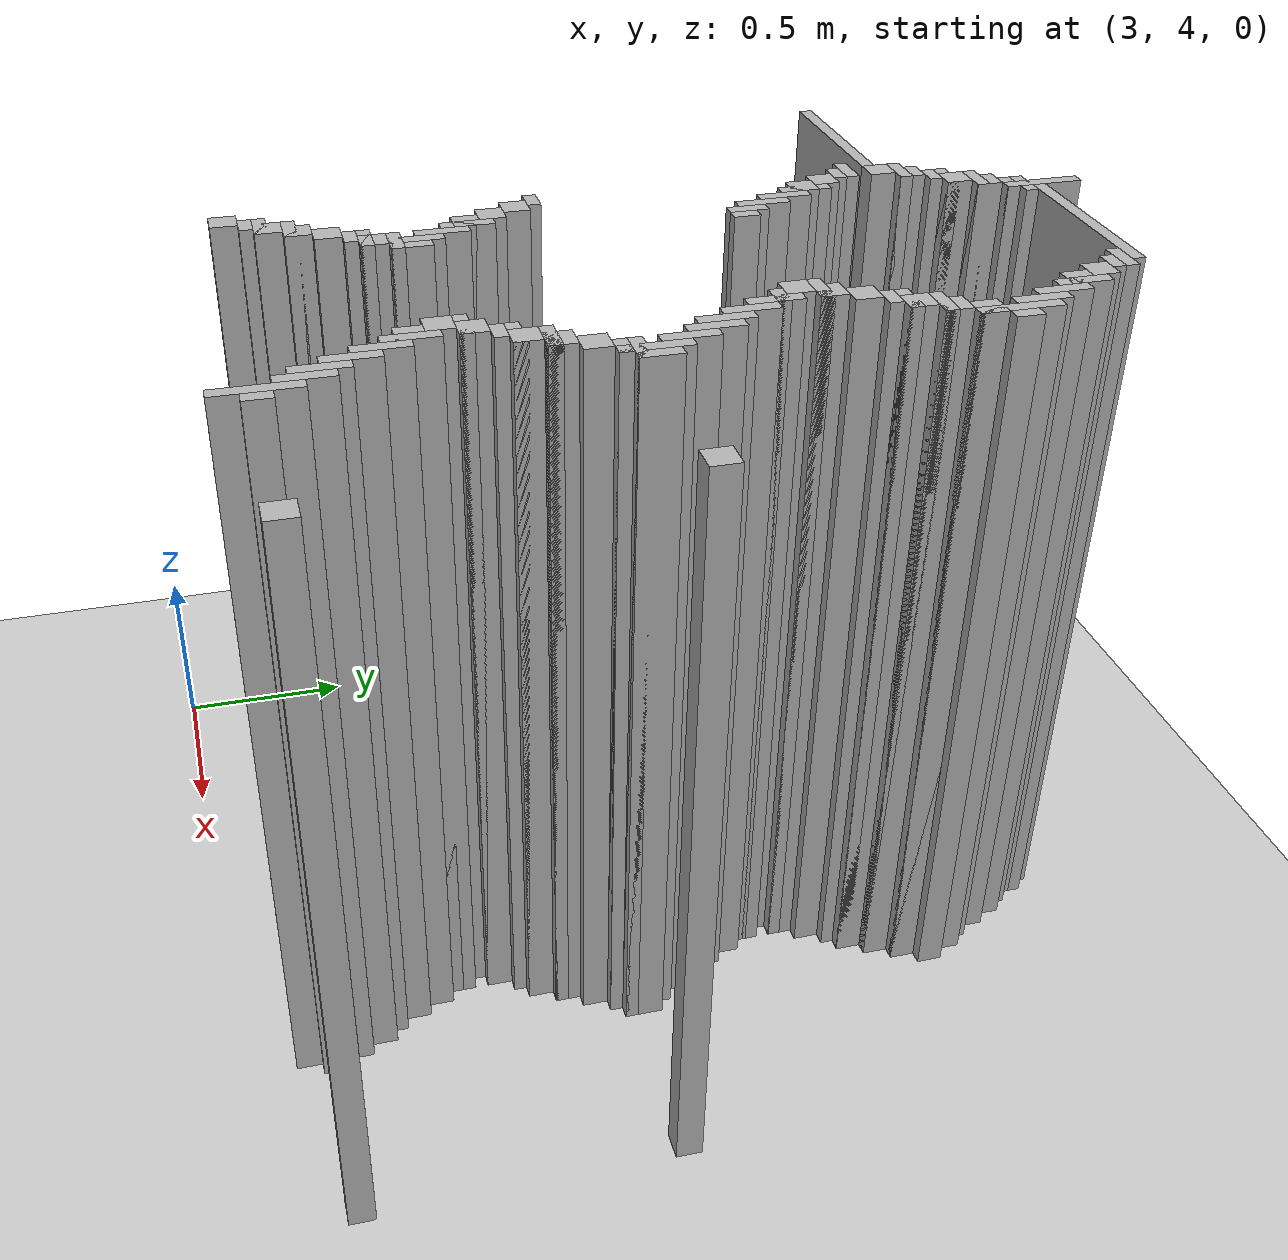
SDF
<sdf version="1.6">
 <world name="slam_world">
  <model name="ground_plane">
   <static>true</static>
   <link name="link">
    <collision name="collision">
     <geometry><plane><normal>0 0 1</normal><size>100 100</size></plane></geometry>
    </collision>
    <visual name="visual">
     <geometry><plane><normal>0 0 1</normal><size>100 100</size></plane></geometry>
     <material>
      <ambient>0.8 0.8 0.8 1</ambient>
      <diffuse>0.8 0.8 0.8 1</diffuse>
      <specular>0.8 0.8 0.8 1</specular>
     </material>
    </visual>
   </link>
  </model>
  <model name="wall_3571">
   <static>true</static>
   <pose>3.9501160092807424 6.403712296983758 1.0 0 0 0</pose>
   <link name="link">
    <collision name="collision">
     <geometry><box><size>0.03480278422273782 0.2088167053364269 2.0</size></box></geometry>
    </collision>
    <visual name="visual">
     <geometry><box><size>0.03480278422273782 0.2088167053364269 2.0</size></box></geometry>
     <material><ambient>0.5 0.5 0.5 1</ambient><diffuse>0.7 0.7 0.7 1</diffuse></material>
    </visual>
   </link>
  </model>
  <model name="wall_3613">
   <static>true</static>
   <pose>4.228538283062645 6.386310904872389 1.0 0 0 0</pose>
   <link name="link">
    <collision name="collision">
     <geometry><box><size>0.5220417633410672 0.03480278422273782 2.0</size></box></geometry>
    </collision>
    <visual name="visual">
     <geometry><box><size>0.5220417633410672 0.03480278422273782 2.0</size></box></geometry>
     <material><ambient>0.5 0.5 0.5 1</ambient><diffuse>0.7 0.7 0.7 1</diffuse></material>
    </visual>
   </link>
  </model>
  <model name="wall_3623">
   <static>true</static>
   <pose>3.9501160092807424 6.351508120649652 1.0 0 0 0</pose>
   <link name="link">
    <collision name="collision">
     <geometry><box><size>0.10440835266821345 0.03480278422273782 2.0</size></box></geometry>
    </collision>
    <visual name="visual">
     <geometry><box><size>0.10440835266821345 0.03480278422273782 2.0</size></box></geometry>
     <material><ambient>0.5 0.5 0.5 1</ambient><diffuse>0.7 0.7 0.7 1</diffuse></material>
    </visual>
   </link>
  </model>
  <model name="wall_3624">
   <static>true</static>
   <pose>4.472157772621809 6.351508120649652 1.0 0 0 0</pose>
   <link name="link">
    <collision name="collision">
     <geometry><box><size>0.10440835266821345 0.03480278422273782 2.0</size></box></geometry>
    </collision>
    <visual name="visual">
     <geometry><box><size>0.10440835266821345 0.03480278422273782 2.0</size></box></geometry>
     <material><ambient>0.5 0.5 0.5 1</ambient><diffuse>0.7 0.7 0.7 1</diffuse></material>
    </visual>
   </link>
  </model>
  <model name="wall_3633">
   <static>true</static>
   <pose>3.932714617169373 6.316705336426914 1.0 0 0 0</pose>
   <link name="link">
    <collision name="collision">
     <geometry><box><size>0.06960556844547564 0.03480278422273782 2.0</size></box></geometry>
    </collision>
    <visual name="visual">
     <geometry><box><size>0.06960556844547564 0.03480278422273782 2.0</size></box></geometry>
     <material><ambient>0.5 0.5 0.5 1</ambient><diffuse>0.7 0.7 0.7 1</diffuse></material>
    </visual>
   </link>
  </model>
  <model name="wall_3634">
   <static>true</static>
   <pose>4.489559164733178 6.316705336426914 1.0 0 0 0</pose>
   <link name="link">
    <collision name="collision">
     <geometry><box><size>0.06960556844547564 0.03480278422273782 2.0</size></box></geometry>
    </collision>
    <visual name="visual">
     <geometry><box><size>0.06960556844547564 0.03480278422273782 2.0</size></box></geometry>
     <material><ambient>0.5 0.5 0.5 1</ambient><diffuse>0.7 0.7 0.7 1</diffuse></material>
    </visual>
   </link>
  </model>
  <model name="wall_3645">
   <static>true</static>
   <pose>3.897911832946636 6.2645011600928076 1.0 0 0 0</pose>
   <link name="link">
    <collision name="collision">
     <geometry><box><size>0.06960556844547564 0.06960556844547564 2.0</size></box></geometry>
    </collision>
    <visual name="visual">
     <geometry><box><size>0.06960556844547564 0.06960556844547564 2.0</size></box></geometry>
     <material><ambient>0.5 0.5 0.5 1</ambient><diffuse>0.7 0.7 0.7 1</diffuse></material>
    </visual>
   </link>
  </model>
  <model name="wall_3646">
   <static>true</static>
   <pose>4.524361948955916 6.2645011600928076 1.0 0 0 0</pose>
   <link name="link">
    <collision name="collision">
     <geometry><box><size>0.06960556844547564 0.06960556844547564 2.0</size></box></geometry>
    </collision>
    <visual name="visual">
     <geometry><box><size>0.06960556844547564 0.06960556844547564 2.0</size></box></geometry>
     <material><ambient>0.5 0.5 0.5 1</ambient><diffuse>0.7 0.7 0.7 1</diffuse></material>
    </visual>
   </link>
  </model>
  <model name="wall_3658">
   <static>true</static>
   <pose>3.8805104408352666 6.247099767981438 1.0 0 0 0</pose>
   <link name="link">
    <collision name="collision">
     <geometry><box><size>0.10440835266821345 0.03480278422273782 2.0</size></box></geometry>
    </collision>
    <visual name="visual">
     <geometry><box><size>0.10440835266821345 0.03480278422273782 2.0</size></box></geometry>
     <material><ambient>0.5 0.5 0.5 1</ambient><diffuse>0.7 0.7 0.7 1</diffuse></material>
    </visual>
   </link>
  </model>
  <model name="wall_3659">
   <static>true</static>
   <pose>4.576566125290023 6.194895591647332 1.0 0 0 0</pose>
   <link name="link">
    <collision name="collision">
     <geometry><box><size>0.03480278422273782 0.13921113689095127 2.0</size></box></geometry>
    </collision>
    <visual name="visual">
     <geometry><box><size>0.03480278422273782 0.13921113689095127 2.0</size></box></geometry>
     <material><ambient>0.5 0.5 0.5 1</ambient><diffuse>0.7 0.7 0.7 1</diffuse></material>
    </visual>
   </link>
  </model>
  <model name="wall_3671">
   <static>true</static>
   <pose>3.863109048723898 6.194895591647332 1.0 0 0 0</pose>
   <link name="link">
    <collision name="collision">
     <geometry><box><size>0.06960556844547564 0.06960556844547564 2.0</size></box></geometry>
    </collision>
    <visual name="visual">
     <geometry><box><size>0.06960556844547564 0.06960556844547564 2.0</size></box></geometry>
     <material><ambient>0.5 0.5 0.5 1</ambient><diffuse>0.7 0.7 0.7 1</diffuse></material>
    </visual>
   </link>
  </model>
  <model name="wall_3672">
   <static>true</static>
   <pose>4.559164733178654 6.194895591647332 1.0 0 0 0</pose>
   <link name="link">
    <collision name="collision">
     <geometry><box><size>0.06960556844547564 0.06960556844547564 2.0</size></box></geometry>
    </collision>
    <visual name="visual">
     <geometry><box><size>0.06960556844547564 0.06960556844547564 2.0</size></box></geometry>
     <material><ambient>0.5 0.5 0.5 1</ambient><diffuse>0.7 0.7 0.7 1</diffuse></material>
    </visual>
   </link>
  </model>
  <model name="wall_3684">
   <static>true</static>
   <pose>3.845707656612529 6.177494199535962 1.0 0 0 0</pose>
   <link name="link">
    <collision name="collision">
     <geometry><box><size>0.10440835266821345 0.03480278422273782 2.0</size></box></geometry>
    </collision>
    <visual name="visual">
     <geometry><box><size>0.10440835266821345 0.03480278422273782 2.0</size></box></geometry>
     <material><ambient>0.5 0.5 0.5 1</ambient><diffuse>0.7 0.7 0.7 1</diffuse></material>
    </visual>
   </link>
  </model>
  <model name="wall_3685">
   <static>true</static>
   <pose>4.611368909512761 6.125290023201856 1.0 0 0 0</pose>
   <link name="link">
    <collision name="collision">
     <geometry><box><size>0.03480278422273782 0.13921113689095127 2.0</size></box></geometry>
    </collision>
    <visual name="visual">
     <geometry><box><size>0.03480278422273782 0.13921113689095127 2.0</size></box></geometry>
     <material><ambient>0.5 0.5 0.5 1</ambient><diffuse>0.7 0.7 0.7 1</diffuse></material>
    </visual>
   </link>
  </model>
  <model name="wall_3695">
   <static>true</static>
   <pose>3.82830626450116 6.142691415313225 1.0 0 0 0</pose>
   <link name="link">
    <collision name="collision">
     <geometry><box><size>0.06960556844547564 0.03480278422273782 2.0</size></box></geometry>
    </collision>
    <visual name="visual">
     <geometry><box><size>0.06960556844547564 0.03480278422273782 2.0</size></box></geometry>
     <material><ambient>0.5 0.5 0.5 1</ambient><diffuse>0.7 0.7 0.7 1</diffuse></material>
    </visual>
   </link>
  </model>
  <model name="wall_3702">
   <static>true</static>
   <pose>3.793503480278422 6.090487238979118 1.0 0 0 0</pose>
   <link name="link">
    <collision name="collision">
     <geometry><box><size>0.06960556844547564 0.06960556844547564 2.0</size></box></geometry>
    </collision>
    <visual name="visual">
     <geometry><box><size>0.06960556844547564 0.06960556844547564 2.0</size></box></geometry>
     <material><ambient>0.5 0.5 0.5 1</ambient><diffuse>0.7 0.7 0.7 1</diffuse></material>
    </visual>
   </link>
  </model>
  <model name="wall_3703">
   <static>true</static>
   <pose>4.646171693735498 6.05568445475638 1.0 0 0 0</pose>
   <link name="link">
    <collision name="collision">
     <geometry><box><size>0.03480278422273782 0.13921113689095127 2.0</size></box></geometry>
    </collision>
    <visual name="visual">
     <geometry><box><size>0.03480278422273782 0.13921113689095127 2.0</size></box></geometry>
     <material><ambient>0.5 0.5 0.5 1</ambient><diffuse>0.7 0.7 0.7 1</diffuse></material>
    </visual>
   </link>
  </model>
  <model name="wall_3715">
   <static>true</static>
   <pose>3.776102088167053 6.073085846867749 1.0 0 0 0</pose>
   <link name="link">
    <collision name="collision">
     <geometry><box><size>0.10440835266821345 0.03480278422273782 2.0</size></box></geometry>
    </collision>
    <visual name="visual">
     <geometry><box><size>0.10440835266821345 0.03480278422273782 2.0</size></box></geometry>
     <material><ambient>0.5 0.5 0.5 1</ambient><diffuse>0.7 0.7 0.7 1</diffuse></material>
    </visual>
   </link>
  </model>
  <model name="wall_3716">
   <static>true</static>
   <pose>4.6809744779582365 5.986078886310905 1.0 0 0 0</pose>
   <link name="link">
    <collision name="collision">
     <geometry><box><size>0.03480278422273782 0.2088167053364269 2.0</size></box></geometry>
    </collision>
    <visual name="visual">
     <geometry><box><size>0.03480278422273782 0.2088167053364269 2.0</size></box></geometry>
     <material><ambient>0.5 0.5 0.5 1</ambient><diffuse>0.7 0.7 0.7 1</diffuse></material>
    </visual>
   </link>
  </model>
  <model name="wall_3726">
   <static>true</static>
   <pose>3.7587006960556844 6.020881670533642 1.0 0 0 0</pose>
   <link name="link">
    <collision name="collision">
     <geometry><box><size>0.06960556844547564 0.06960556844547564 2.0</size></box></geometry>
    </collision>
    <visual name="visual">
     <geometry><box><size>0.06960556844547564 0.06960556844547564 2.0</size></box></geometry>
     <material><ambient>0.5 0.5 0.5 1</ambient><diffuse>0.7 0.7 0.7 1</diffuse></material>
    </visual>
   </link>
  </model>
  <model name="wall_3733">
   <static>true</static>
   <pose>3.51508120649652 6.003480278422273 1.0 0 0 0</pose>
   <link name="link">
    <collision name="collision">
     <geometry><box><size>0.5568445475638051 0.03480278422273782 2.0</size></box></geometry>
    </collision>
    <visual name="visual">
     <geometry><box><size>0.5568445475638051 0.03480278422273782 2.0</size></box></geometry>
     <material><ambient>0.5 0.5 0.5 1</ambient><diffuse>0.7 0.7 0.7 1</diffuse></material>
    </visual>
   </link>
  </model>
  <model name="wall_3734">
   <static>true</static>
   <pose>4.715777262180974 5.986078886310905 1.0 0 0 0</pose>
   <link name="link">
    <collision name="collision">
     <geometry><box><size>0.03480278422273782 0.06960556844547564 2.0</size></box></geometry>
    </collision>
    <visual name="visual">
     <geometry><box><size>0.03480278422273782 0.06960556844547564 2.0</size></box></geometry>
     <material><ambient>0.5 0.5 0.5 1</ambient><diffuse>0.7 0.7 0.7 1</diffuse></material>
    </visual>
   </link>
  </model>
  <model name="wall_3755">
   <static>true</static>
   <pose>3.741299303944315 5.933874709976798 1.0 0 0 0</pose>
   <link name="link">
    <collision name="collision">
     <geometry><box><size>0.10440835266821345 0.03480278422273782 2.0</size></box></geometry>
    </collision>
    <visual name="visual">
     <geometry><box><size>0.10440835266821345 0.03480278422273782 2.0</size></box></geometry>
     <material><ambient>0.5 0.5 0.5 1</ambient><diffuse>0.7 0.7 0.7 1</diffuse></material>
    </visual>
   </link>
  </model>
  <model name="wall_3756">
   <static>true</static>
   <pose>4.663573085846868 5.916473317865429 1.0 0 0 0</pose>
   <link name="link">
    <collision name="collision">
     <geometry><box><size>0.06960556844547564 0.06960556844547564 2.0</size></box></geometry>
    </collision>
    <visual name="visual">
     <geometry><box><size>0.06960556844547564 0.06960556844547564 2.0</size></box></geometry>
     <material><ambient>0.5 0.5 0.5 1</ambient><diffuse>0.7 0.7 0.7 1</diffuse></material>
    </visual>
   </link>
  </model>
  <model name="wall_3766">
   <static>true</static>
   <pose>3.7587006960556844 5.89907192575406 1.0 0 0 0</pose>
   <link name="link">
    <collision name="collision">
     <geometry><box><size>0.06960556844547564 0.03480278422273782 2.0</size></box></geometry>
    </collision>
    <visual name="visual">
     <geometry><box><size>0.06960556844547564 0.03480278422273782 2.0</size></box></geometry>
     <material><ambient>0.5 0.5 0.5 1</ambient><diffuse>0.7 0.7 0.7 1</diffuse></material>
    </visual>
   </link>
  </model>
  <model name="wall_3774">
   <static>true</static>
   <pose>3.793503480278422 5.846867749419953 1.0 0 0 0</pose>
   <link name="link">
    <collision name="collision">
     <geometry><box><size>0.06960556844547564 0.06960556844547564 2.0</size></box></geometry>
    </collision>
    <visual name="visual">
     <geometry><box><size>0.06960556844547564 0.06960556844547564 2.0</size></box></geometry>
     <material><ambient>0.5 0.5 0.5 1</ambient><diffuse>0.7 0.7 0.7 1</diffuse></material>
    </visual>
   </link>
  </model>
  <model name="wall_3775">
   <static>true</static>
   <pose>4.6287703016241295 5.846867749419953 1.0 0 0 0</pose>
   <link name="link">
    <collision name="collision">
     <geometry><box><size>0.06960556844547564 0.06960556844547564 2.0</size></box></geometry>
    </collision>
    <visual name="visual">
     <geometry><box><size>0.06960556844547564 0.06960556844547564 2.0</size></box></geometry>
     <material><ambient>0.5 0.5 0.5 1</ambient><diffuse>0.7 0.7 0.7 1</diffuse></material>
    </visual>
   </link>
  </model>
  <model name="wall_3787">
   <static>true</static>
   <pose>3.845707656612529 5.7772621809744775 1.0 0 0 0</pose>
   <link name="link">
    <collision name="collision">
     <geometry><box><size>0.03480278422273782 0.13921113689095127 2.0</size></box></geometry>
    </collision>
    <visual name="visual">
     <geometry><box><size>0.03480278422273782 0.13921113689095127 2.0</size></box></geometry>
     <material><ambient>0.5 0.5 0.5 1</ambient><diffuse>0.7 0.7 0.7 1</diffuse></material>
    </visual>
   </link>
  </model>
  <model name="wall_3788">
   <static>true</static>
   <pose>4.611368909512761 5.8294663573085845 1.0 0 0 0</pose>
   <link name="link">
    <collision name="collision">
     <geometry><box><size>0.10440835266821345 0.03480278422273782 2.0</size></box></geometry>
    </collision>
    <visual name="visual">
     <geometry><box><size>0.10440835266821345 0.03480278422273782 2.0</size></box></geometry>
     <material><ambient>0.5 0.5 0.5 1</ambient><diffuse>0.7 0.7 0.7 1</diffuse></material>
    </visual>
   </link>
  </model>
  <model name="wall_3800">
   <static>true</static>
   <pose>3.82830626450116 5.7772621809744775 1.0 0 0 0</pose>
   <link name="link">
    <collision name="collision">
     <geometry><box><size>0.06960556844547564 0.06960556844547564 2.0</size></box></geometry>
    </collision>
    <visual name="visual">
     <geometry><box><size>0.06960556844547564 0.06960556844547564 2.0</size></box></geometry>
     <material><ambient>0.5 0.5 0.5 1</ambient><diffuse>0.7 0.7 0.7 1</diffuse></material>
    </visual>
   </link>
  </model>
  <model name="wall_3801">
   <static>true</static>
   <pose>4.593967517401392 5.7772621809744775 1.0 0 0 0</pose>
   <link name="link">
    <collision name="collision">
     <geometry><box><size>0.06960556844547564 0.06960556844547564 2.0</size></box></geometry>
    </collision>
    <visual name="visual">
     <geometry><box><size>0.06960556844547564 0.06960556844547564 2.0</size></box></geometry>
     <material><ambient>0.5 0.5 0.5 1</ambient><diffuse>0.7 0.7 0.7 1</diffuse></material>
    </visual>
   </link>
  </model>
  <model name="wall_3812">
   <static>true</static>
   <pose>3.8805104408352666 5.707656612529002 1.0 0 0 0</pose>
   <link name="link">
    <collision name="collision">
     <geometry><box><size>0.03480278422273782 0.13921113689095127 2.0</size></box></geometry>
    </collision>
    <visual name="visual">
     <geometry><box><size>0.03480278422273782 0.13921113689095127 2.0</size></box></geometry>
     <material><ambient>0.5 0.5 0.5 1</ambient><diffuse>0.7 0.7 0.7 1</diffuse></material>
    </visual>
   </link>
  </model>
  <model name="wall_3813">
   <static>true</static>
   <pose>4.576566125290023 5.759860788863109 1.0 0 0 0</pose>
   <link name="link">
    <collision name="collision">
     <geometry><box><size>0.10440835266821345 0.03480278422273782 2.0</size></box></geometry>
    </collision>
    <visual name="visual">
     <geometry><box><size>0.10440835266821345 0.03480278422273782 2.0</size></box></geometry>
     <material><ambient>0.5 0.5 0.5 1</ambient><diffuse>0.7 0.7 0.7 1</diffuse></material>
    </visual>
   </link>
  </model>
  <model name="wall_3824">
   <static>true</static>
   <pose>4.559164733178654 5.725058004640371 1.0 0 0 0</pose>
   <link name="link">
    <collision name="collision">
     <geometry><box><size>0.06960556844547564 0.03480278422273782 2.0</size></box></geometry>
    </collision>
    <visual name="visual">
     <geometry><box><size>0.06960556844547564 0.03480278422273782 2.0</size></box></geometry>
     <material><ambient>0.5 0.5 0.5 1</ambient><diffuse>0.7 0.7 0.7 1</diffuse></material>
    </visual>
   </link>
  </model>
  <model name="wall_3831">
   <static>true</static>
   <pose>3.9153132250580045 5.638051044083526 1.0 0 0 0</pose>
   <link name="link">
    <collision name="collision">
     <geometry><box><size>0.03480278422273782 0.13921113689095127 2.0</size></box></geometry>
    </collision>
    <visual name="visual">
     <geometry><box><size>0.03480278422273782 0.13921113689095127 2.0</size></box></geometry>
     <material><ambient>0.5 0.5 0.5 1</ambient><diffuse>0.7 0.7 0.7 1</diffuse></material>
    </visual>
   </link>
  </model>
  <model name="wall_3832">
   <static>true</static>
   <pose>4.524361948955916 5.672853828306264 1.0 0 0 0</pose>
   <link name="link">
    <collision name="collision">
     <geometry><box><size>0.06960556844547564 0.06960556844547564 2.0</size></box></geometry>
    </collision>
    <visual name="visual">
     <geometry><box><size>0.06960556844547564 0.06960556844547564 2.0</size></box></geometry>
     <material><ambient>0.5 0.5 0.5 1</ambient><diffuse>0.7 0.7 0.7 1</diffuse></material>
    </visual>
   </link>
  </model>
  <model name="wall_3844">
   <static>true</static>
   <pose>3.9501160092807424 5.58584686774942 1.0 0 0 0</pose>
   <link name="link">
    <collision name="collision">
     <geometry><box><size>0.03480278422273782 0.10440835266821345 2.0</size></box></geometry>
    </collision>
    <visual name="visual">
     <geometry><box><size>0.03480278422273782 0.10440835266821345 2.0</size></box></geometry>
     <material><ambient>0.5 0.5 0.5 1</ambient><diffuse>0.7 0.7 0.7 1</diffuse></material>
    </visual>
   </link>
  </model>
  <model name="wall_3845">
   <static>true</static>
   <pose>4.489559164733178 5.603248259860789 1.0 0 0 0</pose>
   <link name="link">
    <collision name="collision">
     <geometry><box><size>0.06960556844547564 0.06960556844547564 2.0</size></box></geometry>
    </collision>
    <visual name="visual">
     <geometry><box><size>0.06960556844547564 0.06960556844547564 2.0</size></box></geometry>
     <material><ambient>0.5 0.5 0.5 1</ambient><diffuse>0.7 0.7 0.7 1</diffuse></material>
    </visual>
   </link>
  </model>
  <model name="wall_3857">
   <static>true</static>
   <pose>3.98491879350348 5.56844547563805 1.0 0 0 0</pose>
   <link name="link">
    <collision name="collision">
     <geometry><box><size>0.03480278422273782 0.06960556844547564 2.0</size></box></geometry>
    </collision>
    <visual name="visual">
     <geometry><box><size>0.03480278422273782 0.06960556844547564 2.0</size></box></geometry>
     <material><ambient>0.5 0.5 0.5 1</ambient><diffuse>0.7 0.7 0.7 1</diffuse></material>
    </visual>
   </link>
  </model>
  <model name="wall_3858">
   <static>true</static>
   <pose>4.472157772621809 5.58584686774942 1.0 0 0 0</pose>
   <link name="link">
    <collision name="collision">
     <geometry><box><size>0.10440835266821345 0.03480278422273782 2.0</size></box></geometry>
    </collision>
    <visual name="visual">
     <geometry><box><size>0.10440835266821345 0.03480278422273782 2.0</size></box></geometry>
     <material><ambient>0.5 0.5 0.5 1</ambient><diffuse>0.7 0.7 0.7 1</diffuse></material>
    </visual>
   </link>
  </model>
  <model name="wall_3871">
   <static>true</static>
   <pose>4.454756380510441 5.533642691415313 1.0 0 0 0</pose>
   <link name="link">
    <collision name="collision">
     <geometry><box><size>0.06960556844547564 0.06960556844547564 2.0</size></box></geometry>
    </collision>
    <visual name="visual">
     <geometry><box><size>0.06960556844547564 0.06960556844547564 2.0</size></box></geometry>
     <material><ambient>0.5 0.5 0.5 1</ambient><diffuse>0.7 0.7 0.7 1</diffuse></material>
    </visual>
   </link>
  </model>
  <model name="wall_3882">
   <static>true</static>
   <pose>4.506960556844548 5.464037122969837 1.0 0 0 0</pose>
   <link name="link">
    <collision name="collision">
     <geometry><box><size>0.03480278422273782 0.13921113689095127 2.0</size></box></geometry>
    </collision>
    <visual name="visual">
     <geometry><box><size>0.03480278422273782 0.13921113689095127 2.0</size></box></geometry>
     <material><ambient>0.5 0.5 0.5 1</ambient><diffuse>0.7 0.7 0.7 1</diffuse></material>
    </visual>
   </link>
  </model>
  <model name="wall_3897">
   <static>true</static>
   <pose>4.489559164733178 5.481438515081206 1.0 0 0 0</pose>
   <link name="link">
    <collision name="collision">
     <geometry><box><size>0.06960556844547564 0.03480278422273782 2.0</size></box></geometry>
    </collision>
    <visual name="visual">
     <geometry><box><size>0.06960556844547564 0.03480278422273782 2.0</size></box></geometry>
     <material><ambient>0.5 0.5 0.5 1</ambient><diffuse>0.7 0.7 0.7 1</diffuse></material>
    </visual>
   </link>
  </model>
  <model name="wall_3910">
   <static>true</static>
   <pose>4.541763341067285 5.3944315545243615 1.0 0 0 0</pose>
   <link name="link">
    <collision name="collision">
     <geometry><box><size>0.03480278422273782 0.13921113689095127 2.0</size></box></geometry>
    </collision>
    <visual name="visual">
     <geometry><box><size>0.03480278422273782 0.13921113689095127 2.0</size></box></geometry>
     <material><ambient>0.5 0.5 0.5 1</ambient><diffuse>0.7 0.7 0.7 1</diffuse></material>
    </visual>
   </link>
  </model>
  <model name="wall_3923">
   <static>true</static>
   <pose>4.576566125290023 5.324825986078886 1.0 0 0 0</pose>
   <link name="link">
    <collision name="collision">
     <geometry><box><size>0.03480278422273782 0.13921113689095127 2.0</size></box></geometry>
    </collision>
    <visual name="visual">
     <geometry><box><size>0.03480278422273782 0.13921113689095127 2.0</size></box></geometry>
     <material><ambient>0.5 0.5 0.5 1</ambient><diffuse>0.7 0.7 0.7 1</diffuse></material>
    </visual>
   </link>
  </model>
  <model name="wall_3936">
   <static>true</static>
   <pose>4.611368909512761 5.290023201856148 1.0 0 0 0</pose>
   <link name="link">
    <collision name="collision">
     <geometry><box><size>0.03480278422273782 0.13921113689095127 2.0</size></box></geometry>
    </collision>
    <visual name="visual">
     <geometry><box><size>0.03480278422273782 0.13921113689095127 2.0</size></box></geometry>
     <material><ambient>0.5 0.5 0.5 1</ambient><diffuse>0.7 0.7 0.7 1</diffuse></material>
    </visual>
   </link>
  </model>
  <model name="wall_3957">
   <static>true</static>
   <pose>4.646171693735498 5.220417633410673 1.0 0 0 0</pose>
   <link name="link">
    <collision name="collision">
     <geometry><box><size>0.03480278422273782 0.13921113689095127 2.0</size></box></geometry>
    </collision>
    <visual name="visual">
     <geometry><box><size>0.03480278422273782 0.13921113689095127 2.0</size></box></geometry>
     <material><ambient>0.5 0.5 0.5 1</ambient><diffuse>0.7 0.7 0.7 1</diffuse></material>
    </visual>
   </link>
  </model>
  <model name="wall_3977">
   <static>true</static>
   <pose>4.6809744779582365 5.133410672853828 1.0 0 0 0</pose>
   <link name="link">
    <collision name="collision">
     <geometry><box><size>0.03480278422273782 0.17401392111368907 2.0</size></box></geometry>
    </collision>
    <visual name="visual">
     <geometry><box><size>0.03480278422273782 0.17401392111368907 2.0</size></box></geometry>
     <material><ambient>0.5 0.5 0.5 1</ambient><diffuse>0.7 0.7 0.7 1</diffuse></material>
    </visual>
   </link>
  </model>
  <model name="wall_3990">
   <static>true</static>
   <pose>4.715777262180974 5.133410672853828 1.0 0 0 0</pose>
   <link name="link">
    <collision name="collision">
     <geometry><box><size>0.03480278422273782 0.10440835266821345 2.0</size></box></geometry>
    </collision>
    <visual name="visual">
     <geometry><box><size>0.03480278422273782 0.10440835266821345 2.0</size></box></geometry>
     <material><ambient>0.5 0.5 0.5 1</ambient><diffuse>0.7 0.7 0.7 1</diffuse></material>
    </visual>
   </link>
  </model>
  <model name="wall_4003">
   <static>true</static>
   <pose>5.185614849187935 5.1160092807424595 1.0 0 0 0</pose>
   <link name="link">
    <collision name="collision">
     <geometry><box><size>0.06960556844547564 0.06960556844547564 2.0</size></box></geometry>
    </collision>
    <visual name="visual">
     <geometry><box><size>0.06960556844547564 0.06960556844547564 2.0</size></box></geometry>
     <material><ambient>0.5 0.5 0.5 1</ambient><diffuse>0.7 0.7 0.7 1</diffuse></material>
    </visual>
   </link>
  </model>
  <model name="wall_4013">
   <static>true</static>
   <pose>4.6809744779582365 5.09860788863109 1.0 0 0 0</pose>
   <link name="link">
    <collision name="collision">
     <geometry><box><size>0.10440835266821345 0.03480278422273782 2.0</size></box></geometry>
    </collision>
    <visual name="visual">
     <geometry><box><size>0.10440835266821345 0.03480278422273782 2.0</size></box></geometry>
     <material><ambient>0.5 0.5 0.5 1</ambient><diffuse>0.7 0.7 0.7 1</diffuse></material>
    </visual>
   </link>
  </model>
  <model name="wall_4027">
   <static>true</static>
   <pose>3.7587006960556844 5.0638051044083525 1.0 0 0 0</pose>
   <link name="link">
    <collision name="collision">
     <geometry><box><size>0.06960556844547564 0.03480278422273782 2.0</size></box></geometry>
    </collision>
    <visual name="visual">
     <geometry><box><size>0.06960556844547564 0.03480278422273782 2.0</size></box></geometry>
     <material><ambient>0.5 0.5 0.5 1</ambient><diffuse>0.7 0.7 0.7 1</diffuse></material>
    </visual>
   </link>
  </model>
  <model name="wall_4028">
   <static>true</static>
   <pose>4.663573085846868 5.0638051044083525 1.0 0 0 0</pose>
   <link name="link">
    <collision name="collision">
     <geometry><box><size>0.06960556844547564 0.03480278422273782 2.0</size></box></geometry>
    </collision>
    <visual name="visual">
     <geometry><box><size>0.06960556844547564 0.03480278422273782 2.0</size></box></geometry>
     <material><ambient>0.5 0.5 0.5 1</ambient><diffuse>0.7 0.7 0.7 1</diffuse></material>
    </visual>
   </link>
  </model>
  <model name="wall_4042">
   <static>true</static>
   <pose>3.793503480278422 5.0116009280742455 1.0 0 0 0</pose>
   <link name="link">
    <collision name="collision">
     <geometry><box><size>0.06960556844547564 0.06960556844547564 2.0</size></box></geometry>
    </collision>
    <visual name="visual">
     <geometry><box><size>0.06960556844547564 0.06960556844547564 2.0</size></box></geometry>
     <material><ambient>0.5 0.5 0.5 1</ambient><diffuse>0.7 0.7 0.7 1</diffuse></material>
    </visual>
   </link>
  </model>
  <model name="wall_4043">
   <static>true</static>
   <pose>4.6287703016241295 5.0116009280742455 1.0 0 0 0</pose>
   <link name="link">
    <collision name="collision">
     <geometry><box><size>0.06960556844547564 0.06960556844547564 2.0</size></box></geometry>
    </collision>
    <visual name="visual">
     <geometry><box><size>0.06960556844547564 0.06960556844547564 2.0</size></box></geometry>
     <material><ambient>0.5 0.5 0.5 1</ambient><diffuse>0.7 0.7 0.7 1</diffuse></material>
    </visual>
   </link>
  </model>
  <model name="wall_4057">
   <static>true</static>
   <pose>3.82830626450116 4.94199535962877 1.0 0 0 0</pose>
   <link name="link">
    <collision name="collision">
     <geometry><box><size>0.06960556844547564 0.06960556844547564 2.0</size></box></geometry>
    </collision>
    <visual name="visual">
     <geometry><box><size>0.06960556844547564 0.06960556844547564 2.0</size></box></geometry>
     <material><ambient>0.5 0.5 0.5 1</ambient><diffuse>0.7 0.7 0.7 1</diffuse></material>
    </visual>
   </link>
  </model>
  <model name="wall_4058">
   <static>true</static>
   <pose>4.593967517401392 4.94199535962877 1.0 0 0 0</pose>
   <link name="link">
    <collision name="collision">
     <geometry><box><size>0.06960556844547564 0.06960556844547564 2.0</size></box></geometry>
    </collision>
    <visual name="visual">
     <geometry><box><size>0.06960556844547564 0.06960556844547564 2.0</size></box></geometry>
     <material><ambient>0.5 0.5 0.5 1</ambient><diffuse>0.7 0.7 0.7 1</diffuse></material>
    </visual>
   </link>
  </model>
  <model name="wall_4072">
   <static>true</static>
   <pose>3.8805104408352666 4.872389791183294 1.0 0 0 0</pose>
   <link name="link">
    <collision name="collision">
     <geometry><box><size>0.03480278422273782 0.13921113689095127 2.0</size></box></geometry>
    </collision>
    <visual name="visual">
     <geometry><box><size>0.03480278422273782 0.13921113689095127 2.0</size></box></geometry>
     <material><ambient>0.5 0.5 0.5 1</ambient><diffuse>0.7 0.7 0.7 1</diffuse></material>
    </visual>
   </link>
  </model>
  <model name="wall_4073">
   <static>true</static>
   <pose>4.576566125290023 4.924593967517401 1.0 0 0 0</pose>
   <link name="link">
    <collision name="collision">
     <geometry><box><size>0.10440835266821345 0.03480278422273782 2.0</size></box></geometry>
    </collision>
    <visual name="visual">
     <geometry><box><size>0.10440835266821345 0.03480278422273782 2.0</size></box></geometry>
     <material><ambient>0.5 0.5 0.5 1</ambient><diffuse>0.7 0.7 0.7 1</diffuse></material>
    </visual>
   </link>
  </model>
  <model name="wall_4087">
   <static>true</static>
   <pose>3.863109048723898 4.872389791183294 1.0 0 0 0</pose>
   <link name="link">
    <collision name="collision">
     <geometry><box><size>0.06960556844547564 0.06960556844547564 2.0</size></box></geometry>
    </collision>
    <visual name="visual">
     <geometry><box><size>0.06960556844547564 0.06960556844547564 2.0</size></box></geometry>
     <material><ambient>0.5 0.5 0.5 1</ambient><diffuse>0.7 0.7 0.7 1</diffuse></material>
    </visual>
   </link>
  </model>
  <model name="wall_4088">
   <static>true</static>
   <pose>4.559164733178654 4.872389791183294 1.0 0 0 0</pose>
   <link name="link">
    <collision name="collision">
     <geometry><box><size>0.06960556844547564 0.06960556844547564 2.0</size></box></geometry>
    </collision>
    <visual name="visual">
     <geometry><box><size>0.06960556844547564 0.06960556844547564 2.0</size></box></geometry>
     <material><ambient>0.5 0.5 0.5 1</ambient><diffuse>0.7 0.7 0.7 1</diffuse></material>
    </visual>
   </link>
  </model>
  <model name="wall_4100">
   <static>true</static>
   <pose>3.9153132250580045 4.802784222737819 1.0 0 0 0</pose>
   <link name="link">
    <collision name="collision">
     <geometry><box><size>0.03480278422273782 0.13921113689095127 2.0</size></box></geometry>
    </collision>
    <visual name="visual">
     <geometry><box><size>0.03480278422273782 0.13921113689095127 2.0</size></box></geometry>
     <material><ambient>0.5 0.5 0.5 1</ambient><diffuse>0.7 0.7 0.7 1</diffuse></material>
    </visual>
   </link>
  </model>
  <model name="wall_4101">
   <static>true</static>
   <pose>4.541763341067285 4.854988399071925 1.0 0 0 0</pose>
   <link name="link">
    <collision name="collision">
     <geometry><box><size>0.10440835266821345 0.03480278422273782 2.0</size></box></geometry>
    </collision>
    <visual name="visual">
     <geometry><box><size>0.10440835266821345 0.03480278422273782 2.0</size></box></geometry>
     <material><ambient>0.5 0.5 0.5 1</ambient><diffuse>0.7 0.7 0.7 1</diffuse></material>
    </visual>
   </link>
  </model>
  <model name="wall_4113">
   <static>true</static>
   <pose>4.524361948955916 4.820185614849188 1.0 0 0 0</pose>
   <link name="link">
    <collision name="collision">
     <geometry><box><size>0.06960556844547564 0.03480278422273782 2.0</size></box></geometry>
    </collision>
    <visual name="visual">
     <geometry><box><size>0.06960556844547564 0.03480278422273782 2.0</size></box></geometry>
     <material><ambient>0.5 0.5 0.5 1</ambient><diffuse>0.7 0.7 0.7 1</diffuse></material>
    </visual>
   </link>
  </model>
  <model name="wall_4123">
   <static>true</static>
   <pose>3.9501160092807424 4.698375870069605 1.0 0 0 0</pose>
   <link name="link">
    <collision name="collision">
     <geometry><box><size>0.03480278422273782 0.2088167053364269 2.0</size></box></geometry>
    </collision>
    <visual name="visual">
     <geometry><box><size>0.03480278422273782 0.2088167053364269 2.0</size></box></geometry>
     <material><ambient>0.5 0.5 0.5 1</ambient><diffuse>0.7 0.7 0.7 1</diffuse></material>
    </visual>
   </link>
  </model>
  <model name="wall_4124">
   <static>true</static>
   <pose>4.489559164733178 4.767981438515081 1.0 0 0 0</pose>
   <link name="link">
    <collision name="collision">
     <geometry><box><size>0.06960556844547564 0.06960556844547564 2.0</size></box></geometry>
    </collision>
    <visual name="visual">
     <geometry><box><size>0.06960556844547564 0.06960556844547564 2.0</size></box></geometry>
     <material><ambient>0.5 0.5 0.5 1</ambient><diffuse>0.7 0.7 0.7 1</diffuse></material>
    </visual>
   </link>
  </model>
  <model name="wall_4137">
   <static>true</static>
   <pose>3.98491879350348 4.715777262180974 1.0 0 0 0</pose>
   <link name="link">
    <collision name="collision">
     <geometry><box><size>0.03480278422273782 0.10440835266821345 2.0</size></box></geometry>
    </collision>
    <visual name="visual">
     <geometry><box><size>0.03480278422273782 0.10440835266821345 2.0</size></box></geometry>
     <material><ambient>0.5 0.5 0.5 1</ambient><diffuse>0.7 0.7 0.7 1</diffuse></material>
    </visual>
   </link>
  </model>
  <model name="wall_4138">
   <static>true</static>
   <pose>4.472157772621809 4.750580046403712 1.0 0 0 0</pose>
   <link name="link">
    <collision name="collision">
     <geometry><box><size>0.10440835266821345 0.03480278422273782 2.0</size></box></geometry>
    </collision>
    <visual name="visual">
     <geometry><box><size>0.10440835266821345 0.03480278422273782 2.0</size></box></geometry>
     <material><ambient>0.5 0.5 0.5 1</ambient><diffuse>0.7 0.7 0.7 1</diffuse></material>
    </visual>
   </link>
  </model>
  <model name="wall_4150">
   <static>true</static>
   <pose>4.454756380510441 4.698375870069605 1.0 0 0 0</pose>
   <link name="link">
    <collision name="collision">
     <geometry><box><size>0.06960556844547564 0.06960556844547564 2.0</size></box></geometry>
    </collision>
    <visual name="visual">
     <geometry><box><size>0.06960556844547564 0.06960556844547564 2.0</size></box></geometry>
     <material><ambient>0.5 0.5 0.5 1</ambient><diffuse>0.7 0.7 0.7 1</diffuse></material>
    </visual>
   </link>
  </model>
  <model name="wall_4163">
   <static>true</static>
   <pose>3.9501160092807424 4.6809744779582365 1.0 0 0 0</pose>
   <link name="link">
    <collision name="collision">
     <geometry><box><size>0.10440835266821345 0.03480278422273782 2.0</size></box></geometry>
    </collision>
    <visual name="visual">
     <geometry><box><size>0.10440835266821345 0.03480278422273782 2.0</size></box></geometry>
     <material><ambient>0.5 0.5 0.5 1</ambient><diffuse>0.7 0.7 0.7 1</diffuse></material>
    </visual>
   </link>
  </model>
  <model name="wall_4164">
   <static>true</static>
   <pose>4.506960556844548 4.6287703016241295 1.0 0 0 0</pose>
   <link name="link">
    <collision name="collision">
     <geometry><box><size>0.03480278422273782 0.13921113689095127 2.0</size></box></geometry>
    </collision>
    <visual name="visual">
     <geometry><box><size>0.03480278422273782 0.13921113689095127 2.0</size></box></geometry>
     <material><ambient>0.5 0.5 0.5 1</ambient><diffuse>0.7 0.7 0.7 1</diffuse></material>
    </visual>
   </link>
  </model>
  <model name="wall_4177">
   <static>true</static>
   <pose>3.932714617169373 4.6287703016241295 1.0 0 0 0</pose>
   <link name="link">
    <collision name="collision">
     <geometry><box><size>0.06960556844547564 0.06960556844547564 2.0</size></box></geometry>
    </collision>
    <visual name="visual">
     <geometry><box><size>0.06960556844547564 0.06960556844547564 2.0</size></box></geometry>
     <material><ambient>0.5 0.5 0.5 1</ambient><diffuse>0.7 0.7 0.7 1</diffuse></material>
    </visual>
   </link>
  </model>
  <model name="wall_4178">
   <static>true</static>
   <pose>4.489559164733178 4.6287703016241295 1.0 0 0 0</pose>
   <link name="link">
    <collision name="collision">
     <geometry><box><size>0.06960556844547564 0.06960556844547564 2.0</size></box></geometry>
    </collision>
    <visual name="visual">
     <geometry><box><size>0.06960556844547564 0.06960556844547564 2.0</size></box></geometry>
     <material><ambient>0.5 0.5 0.5 1</ambient><diffuse>0.7 0.7 0.7 1</diffuse></material>
    </visual>
   </link>
  </model>
  <model name="wall_4192">
   <static>true</static>
   <pose>3.9153132250580045 4.611368909512761 1.0 0 0 0</pose>
   <link name="link">
    <collision name="collision">
     <geometry><box><size>0.10440835266821345 0.03480278422273782 2.0</size></box></geometry>
    </collision>
    <visual name="visual">
     <geometry><box><size>0.10440835266821345 0.03480278422273782 2.0</size></box></geometry>
     <material><ambient>0.5 0.5 0.5 1</ambient><diffuse>0.7 0.7 0.7 1</diffuse></material>
    </visual>
   </link>
  </model>
  <model name="wall_4193">
   <static>true</static>
   <pose>4.541763341067285 4.559164733178654 1.0 0 0 0</pose>
   <link name="link">
    <collision name="collision">
     <geometry><box><size>0.03480278422273782 0.13921113689095127 2.0</size></box></geometry>
    </collision>
    <visual name="visual">
     <geometry><box><size>0.03480278422273782 0.13921113689095127 2.0</size></box></geometry>
     <material><ambient>0.5 0.5 0.5 1</ambient><diffuse>0.7 0.7 0.7 1</diffuse></material>
    </visual>
   </link>
  </model>
  <model name="wall_4204">
   <static>true</static>
   <pose>3.897911832946636 4.576566125290023 1.0 0 0 0</pose>
   <link name="link">
    <collision name="collision">
     <geometry><box><size>0.06960556844547564 0.03480278422273782 2.0</size></box></geometry>
    </collision>
    <visual name="visual">
     <geometry><box><size>0.06960556844547564 0.03480278422273782 2.0</size></box></geometry>
     <material><ambient>0.5 0.5 0.5 1</ambient><diffuse>0.7 0.7 0.7 1</diffuse></material>
    </visual>
   </link>
  </model>
  <model name="wall_4214">
   <static>true</static>
   <pose>3.863109048723898 4.524361948955916 1.0 0 0 0</pose>
   <link name="link">
    <collision name="collision">
     <geometry><box><size>0.06960556844547564 0.06960556844547564 2.0</size></box></geometry>
    </collision>
    <visual name="visual">
     <geometry><box><size>0.06960556844547564 0.06960556844547564 2.0</size></box></geometry>
     <material><ambient>0.5 0.5 0.5 1</ambient><diffuse>0.7 0.7 0.7 1</diffuse></material>
    </visual>
   </link>
  </model>
  <model name="wall_4215">
   <static>true</static>
   <pose>4.576566125290023 4.489559164733178 1.0 0 0 0</pose>
   <link name="link">
    <collision name="collision">
     <geometry><box><size>0.03480278422273782 0.13921113689095127 2.0</size></box></geometry>
    </collision>
    <visual name="visual">
     <geometry><box><size>0.03480278422273782 0.13921113689095127 2.0</size></box></geometry>
     <material><ambient>0.5 0.5 0.5 1</ambient><diffuse>0.7 0.7 0.7 1</diffuse></material>
    </visual>
   </link>
  </model>
  <model name="wall_4229">
   <static>true</static>
   <pose>3.82830626450116 4.454756380510441 1.0 0 0 0</pose>
   <link name="link">
    <collision name="collision">
     <geometry><box><size>0.06960556844547564 0.06960556844547564 2.0</size></box></geometry>
    </collision>
    <visual name="visual">
     <geometry><box><size>0.06960556844547564 0.06960556844547564 2.0</size></box></geometry>
     <material><ambient>0.5 0.5 0.5 1</ambient><diffuse>0.7 0.7 0.7 1</diffuse></material>
    </visual>
   </link>
  </model>
  <model name="wall_4230">
   <static>true</static>
   <pose>4.611368909512761 4.419953596287703 1.0 0 0 0</pose>
   <link name="link">
    <collision name="collision">
     <geometry><box><size>0.03480278422273782 0.13921113689095127 2.0</size></box></geometry>
    </collision>
    <visual name="visual">
     <geometry><box><size>0.03480278422273782 0.13921113689095127 2.0</size></box></geometry>
     <material><ambient>0.5 0.5 0.5 1</ambient><diffuse>0.7 0.7 0.7 1</diffuse></material>
    </visual>
   </link>
  </model>
  <model name="wall_4244">
   <static>true</static>
   <pose>3.810904872389791 4.437354988399072 1.0 0 0 0</pose>
   <link name="link">
    <collision name="collision">
     <geometry><box><size>0.10440835266821345 0.03480278422273782 2.0</size></box></geometry>
    </collision>
    <visual name="visual">
     <geometry><box><size>0.10440835266821345 0.03480278422273782 2.0</size></box></geometry>
     <material><ambient>0.5 0.5 0.5 1</ambient><diffuse>0.7 0.7 0.7 1</diffuse></material>
    </visual>
   </link>
  </model>
  <model name="wall_4245">
   <static>true</static>
   <pose>4.646171693735498 4.385150812064965 1.0 0 0 0</pose>
   <link name="link">
    <collision name="collision">
     <geometry><box><size>0.03480278422273782 0.13921113689095127 2.0</size></box></geometry>
    </collision>
    <visual name="visual">
     <geometry><box><size>0.03480278422273782 0.13921113689095127 2.0</size></box></geometry>
     <material><ambient>0.5 0.5 0.5 1</ambient><diffuse>0.7 0.7 0.7 1</diffuse></material>
    </visual>
   </link>
  </model>
  <model name="wall_4256">
   <static>true</static>
   <pose>3.793503480278422 4.385150812064965 1.0 0 0 0</pose>
   <link name="link">
    <collision name="collision">
     <geometry><box><size>0.06960556844547564 0.06960556844547564 2.0</size></box></geometry>
    </collision>
    <visual name="visual">
     <geometry><box><size>0.06960556844547564 0.06960556844547564 2.0</size></box></geometry>
     <material><ambient>0.5 0.5 0.5 1</ambient><diffuse>0.7 0.7 0.7 1</diffuse></material>
    </visual>
   </link>
  </model>
  <model name="wall_4265">
   <static>true</static>
   <pose>3.776102088167053 4.367749419953596 1.0 0 0 0</pose>
   <link name="link">
    <collision name="collision">
     <geometry><box><size>0.10440835266821345 0.03480278422273782 2.0</size></box></geometry>
    </collision>
    <visual name="visual">
     <geometry><box><size>0.10440835266821345 0.03480278422273782 2.0</size></box></geometry>
     <material><ambient>0.5 0.5 0.5 1</ambient><diffuse>0.7 0.7 0.7 1</diffuse></material>
    </visual>
   </link>
  </model>
  <model name="wall_4266">
   <static>true</static>
   <pose>4.6809744779582365 4.280742459396752 1.0 0 0 0</pose>
   <link name="link">
    <collision name="collision">
     <geometry><box><size>0.03480278422273782 0.2088167053364269 2.0</size></box></geometry>
    </collision>
    <visual name="visual">
     <geometry><box><size>0.03480278422273782 0.2088167053364269 2.0</size></box></geometry>
     <material><ambient>0.5 0.5 0.5 1</ambient><diffuse>0.7 0.7 0.7 1</diffuse></material>
    </visual>
   </link>
  </model>
  <model name="wall_4277">
   <static>true</static>
   <pose>3.7587006960556844 4.332946635730858 1.0 0 0 0</pose>
   <link name="link">
    <collision name="collision">
     <geometry><box><size>0.06960556844547564 0.03480278422273782 2.0</size></box></geometry>
    </collision>
    <visual name="visual">
     <geometry><box><size>0.06960556844547564 0.03480278422273782 2.0</size></box></geometry>
     <material><ambient>0.5 0.5 0.5 1</ambient><diffuse>0.7 0.7 0.7 1</diffuse></material>
    </visual>
   </link>
  </model>
  <model name="wall_4287">
   <static>true</static>
   <pose>3.7238979118329465 4.280742459396752 1.0 0 0 0</pose>
   <link name="link">
    <collision name="collision">
     <geometry><box><size>0.06960556844547564 0.06960556844547564 2.0</size></box></geometry>
    </collision>
    <visual name="visual">
     <geometry><box><size>0.06960556844547564 0.06960556844547564 2.0</size></box></geometry>
     <material><ambient>0.5 0.5 0.5 1</ambient><diffuse>0.7 0.7 0.7 1</diffuse></material>
    </visual>
   </link>
  </model>
  <model name="wall_4288">
   <static>true</static>
   <pose>4.715777262180974 4.280742459396752 1.0 0 0 0</pose>
   <link name="link">
    <collision name="collision">
     <geometry><box><size>0.03480278422273782 0.06960556844547564 2.0</size></box></geometry>
    </collision>
    <visual name="visual">
     <geometry><box><size>0.03480278422273782 0.06960556844547564 2.0</size></box></geometry>
     <material><ambient>0.5 0.5 0.5 1</ambient><diffuse>0.7 0.7 0.7 1</diffuse></material>
    </visual>
   </link>
  </model>
  <model name="wall_4289">
   <static>true</static>
   <pose>5.185614849187935 4.280742459396752 1.0 0 0 0</pose>
   <link name="link">
    <collision name="collision">
     <geometry><box><size>0.06960556844547564 0.06960556844547564 2.0</size></box></geometry>
    </collision>
    <visual name="visual">
     <geometry><box><size>0.06960556844547564 0.06960556844547564 2.0</size></box></geometry>
     <material><ambient>0.5 0.5 0.5 1</ambient><diffuse>0.7 0.7 0.7 1</diffuse></material>
    </visual>
   </link>
  </model>
 </world>
</sdf>
